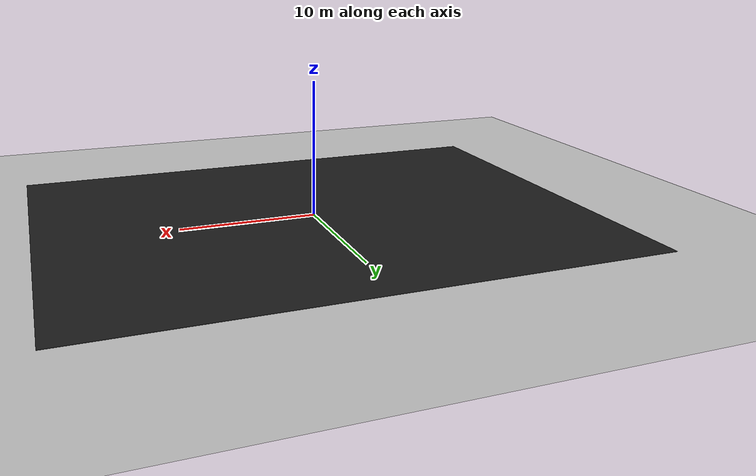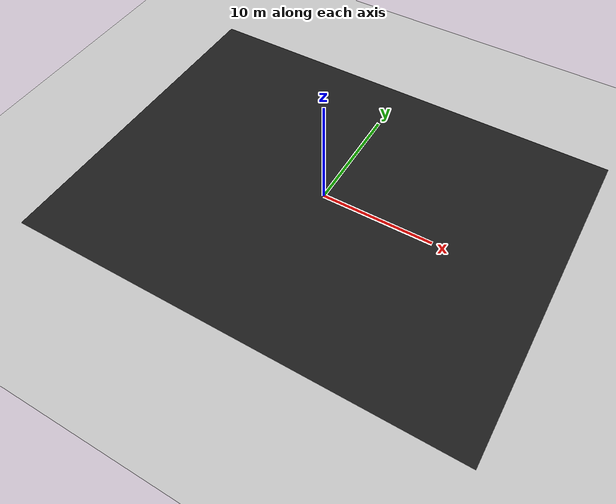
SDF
<sdf version="1.6">
 <world name="tunnel_no_textures">
  <model name="ground_plane">
   <static>1</static>
   <link name="link">
    <collision name="collision">
     <geometry><plane><normal>0 0 1</normal><size>50 50</size></plane></geometry>
     <surface><friction><ode><mu>100</mu><mu2>50</mu2></ode></friction></surface>
    </collision>
    <visual name="visual">
     <cast_shadows>0</cast_shadows>
     <geometry><plane><normal>0 0 1</normal><size>100 100</size></plane></geometry>
     <material>
      <script><name>Gazebo/Grey</name><uri>file://media/materials/scripts/gazebo.material</uri></script>
     </material>
    </visual>
    <velocity_decay><linear>0</linear><angular>0</angular></velocity_decay>
   </link>
  </model>
  <model name="asphalt">
   <static>1</static>
   <link name="link">
    <visual name="visual">
     <pose>0 0 0.001 0 -0 0</pose>
     <geometry><plane><normal>0 0 1</normal><size>40 30</size></plane></geometry>
     <material>
      <script><name>Gazebo/Black</name><uri>file://media/materials/scripts/gazebo.material</uri></script>
     </material>
    </visual>
   </link>
  </model>
 </world>
</sdf>
